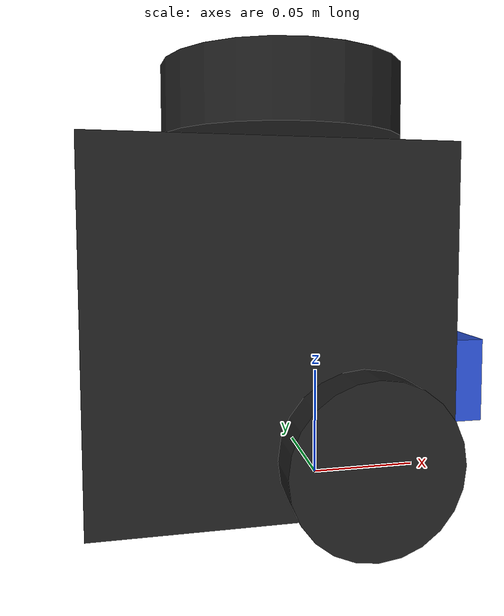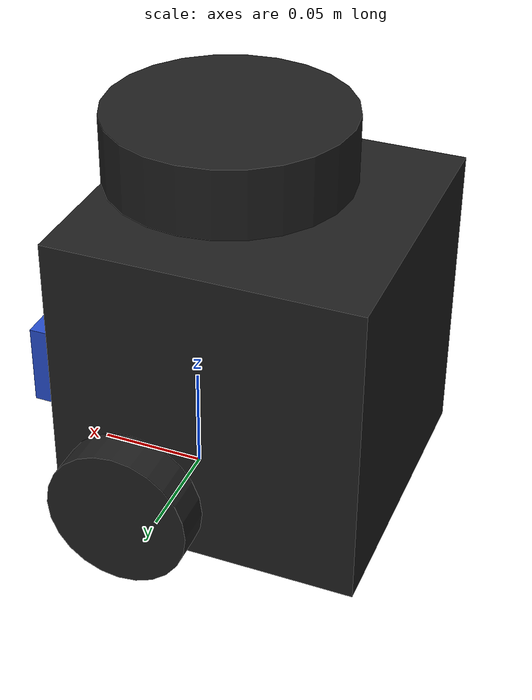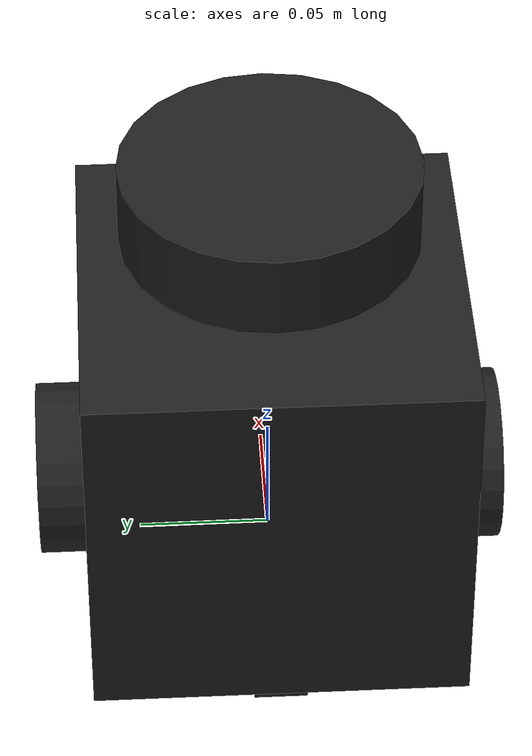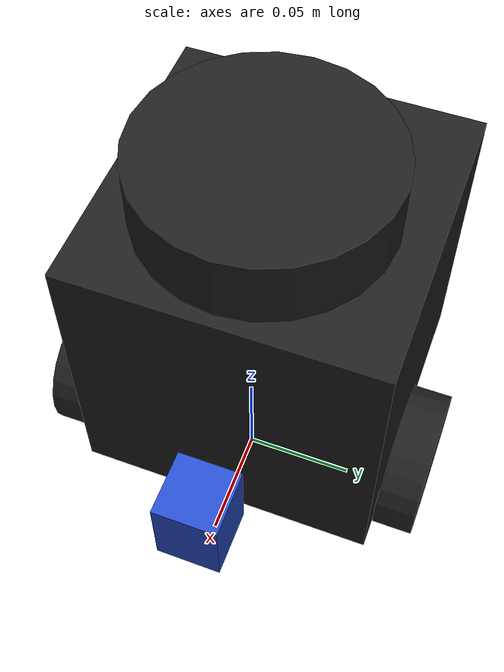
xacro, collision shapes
<?xml version="1.0" ?>
<robot name="turtlebot3_burger" xmlns:xacro="http://ros.org/wiki/xacro">
  <xacro:include filename="$(find turtlebot3_description)/urdf/common_properties.xacro"/>
  <xacro:include filename="$(find turtlebot3_description)/urdf/turtlebot3_burger.gazebo.xacro"/>
  <xacro:property name="height3" value="1" /> <!-- Link 3 -->
  <xacro:property name="axel_offset" value="0.05" /> <!-- Space btw top of beam and the each joint -->

  <link name="base_footprint"/>

  <joint name="base_joint" type="fixed">
    <parent link="base_footprint"/>
    <child link="base_link"/>
    <origin xyz="0.0 0.0 0.010" rpy="0 0 0"/>
  </joint>

  <link name="base_link">
    <visual>
      <origin xyz="-0.032 0 0.0" rpy="0 0 0"/>
      <geometry>
        <mesh filename="package://turtlebot3_description/meshes/bases/burger_base.stl" scale="0.001 0.001 0.001"/>
      </geometry>
      <material name="light_black"/>
    </visual>

    <collision>
      <origin xyz="-0.032 0 0.070" rpy="0 0 0"/>
      <geometry>
        <box size="0.140 0.140 0.143"/>
      </geometry>
    </collision>

    <inertial>
      <origin xyz="0 0 0" rpy="0 0 0"/>
      <mass value="8.2573504e-01"/>
      <inertia ixx="2.2124416e-03" ixy="-1.2294101e-05" ixz="3.4938785e-05"
               iyy="2.1193702e-03" iyz="-5.0120904e-06"
               izz="2.0064271e-03" />
    </inertial>
  </link>

  <joint name="wheel_left_joint" type="continuous">
    <parent link="base_link"/>
    <child link="wheel_left_link"/>
    <origin xyz="0.0 0.08 0.023" rpy="-1.57 0 0"/>
    <axis xyz="0 0 1"/>
  </joint>

  <link name="wheel_left_link">
    <visual>
      <origin xyz="0 0 0" rpy="1.57 0 0"/>
      <geometry>
        <mesh filename="package://turtlebot3_description/meshes/wheels/left_tire.stl" scale="0.001 0.001 0.001"/>
      </geometry>
      <material name="dark"/>
    </visual>

    <collision>
      <origin xyz="0 0 0" rpy="0 0 0"/>
      <geometry>
        <cylinder length="0.018" radius="0.033"/>
      </geometry>
    </collision>

    <inertial>
      <origin xyz="0 0 0" />
      <mass value="2.8498940e-02" />
      <inertia ixx="1.1175580e-05" ixy="-4.2369783e-11" ixz="-5.9381719e-09"
               iyy="1.1192413e-05" iyz="-1.4400107e-11"
               izz="2.0712558e-05" />
      </inertial>
  </link>

  <joint name="wheel_right_joint" type="continuous">
    <parent link="base_link"/>
    <child link="wheel_right_link"/>
    <origin xyz="0.0 -0.080 0.023" rpy="-1.57 0 0"/>
    <axis xyz="0 0 1"/>
  </joint>

  <link name="wheel_right_link">
    <visual>
      <origin xyz="0 0 0" rpy="1.57 0 0"/>
      <geometry>
        <mesh filename="package://turtlebot3_description/meshes/wheels/right_tire.stl" scale="0.001 0.001 0.001"/>
      </geometry>
      <material name="dark"/>
    </visual>

    <collision>
      <origin xyz="0 0 0" rpy="0 0 0"/>
      <geometry>
        <cylinder length="0.018" radius="0.033"/>
      </geometry>
    </collision>

    <inertial>
      <origin xyz="0 0 0" />
      <mass value="2.8498940e-02" />
      <inertia ixx="1.1175580e-05" ixy="-4.2369783e-11" ixz="-5.9381719e-09"
               iyy="1.1192413e-05" iyz="-1.4400107e-11"
               izz="2.0712558e-05" />
      </inertial>
  </link>

  <joint name="caster_back_joint" type="fixed">
    <parent link="base_link"/>
    <child link="caster_back_link"/>
    <origin xyz="-0.081 0 -0.004" rpy="-1.57 0 0"/>
  </joint>

  <link name="caster_back_link">
    <collision>
      <origin xyz="0 0.001 0" rpy="0 0 0"/>
      <geometry>
        <box size="0.030 0.009 0.020"/>
      </geometry>
    </collision>

    <inertial>
      <origin xyz="0 0 0" />
      <mass value="0.005" />
      <inertia ixx="0.001" ixy="0.0" ixz="0.0"
               iyy="0.001" iyz="0.0"
               izz="0.001" />
    </inertial>
  </link>

  <joint name="imu_joint" type="fixed">
    <parent link="base_link"/>
    <child link="imu_link"/>
    <origin xyz="-0.032 0 0.068" rpy="0 0 0"/>
  </joint>

  <link name="imu_link"/>

  <joint name="scan_joint" type="fixed">
    <parent link="base_link"/>
    <child link="base_scan"/>
    <origin xyz="-0.032 0 0.172" rpy="0 0 0"/>
  </joint>

  <link name="base_scan">
    <visual>
      <origin xyz="0 0 0.0" rpy="0 0 0"/>
      <geometry>
        <mesh filename="package://turtlebot3_description/meshes/sensors/lds.stl" scale="0.001 0.001 0.001"/>
      </geometry>
      <material name="dark"/>
    </visual>

    <collision>
      <origin xyz="0.015 0 -0.0065" rpy="0 0 0"/>
      <geometry>
        <cylinder length="0.0315" radius="0.055"/>
      </geometry>
    </collision>

    <inertial>
      <mass value="0.114" />
      <origin xyz="0 0 0" />
      <inertia ixx="0.001" ixy="0.0" ixz="0.0"
               iyy="0.001" iyz="0.0"
               izz="0.001" />
    </inertial>
  </link>

  <xacro:property name="laser_size_x" value="0.03"/>
  <xacro:property name="laser_size_y" value="0.03"/>
  <xacro:property name="laser_size_z" value="0.04"/>
  <xacro:property name="laser_origin_x" value="0.065"/>
  <xacro:property name="laser_origin_y" value="0"/>
  <xacro:property name="laser_origin_z" value="0.035"/>
  <xacro:macro name="default_inertial" params="mass">
    <inertial>
      <mass value="${mass}"/>
      <inertia ixx="1.0" ixy="0.0" ixz="0.0" iyy="1.0" iyz="0.0" izz="1.0"/>
    </inertial>
  </xacro:macro>

  <!--Laser Scan-->
  <link name="sensor_laser">
    <visual>
      <geometry>
        <mesh filename="package://turtlebot3_description/meshes/hokuyo.dae"/>
        <!--box size="${laser_size_x} ${laser_size_y} ${laser_size_z}"/-->
      </geometry>
      <material name="blue"/>
    </visual>
    <collision>
      <geometry>
        <box size="${laser_size_x} ${laser_size_y} ${laser_size_z}"/>
      </geometry>
    </collision>
    <xacro:default_inertial mass="0.02"/>
  </link>

  <joint name="sensor_laser_joint" type="fixed">
    <origin xyz="${laser_origin_x} ${laser_origin_y} ${laser_origin_z}" rpy="0 0 0" />
    <parent link="base_link"/>
    <child link="sensor_laser" />
  </joint>

</robot>
